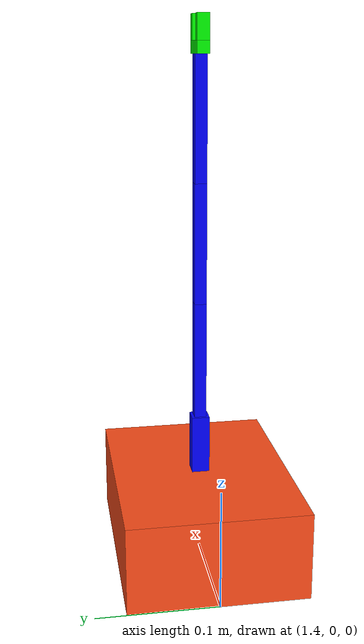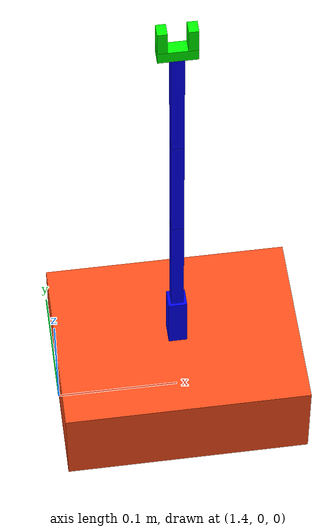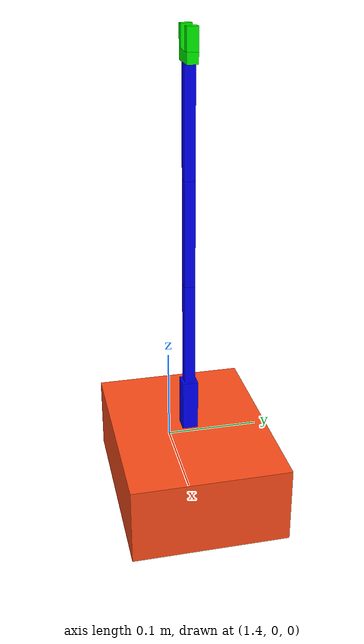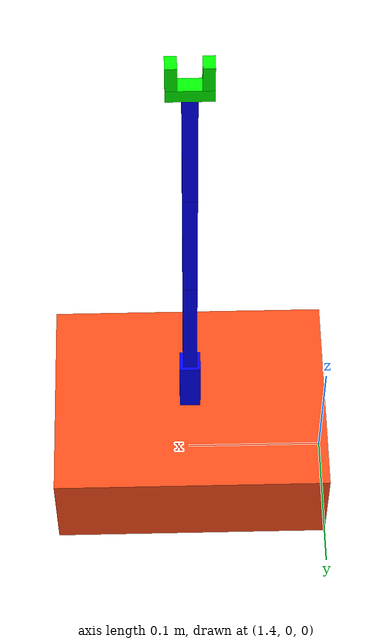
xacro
<?xml version="1.0"?>
<robot xmlns:xacro="http://www.ros.org/wiki/xacro" name="robotic_arm">
    <xacro:arg name="initial_positions_file" default="initial_positions.yaml" />

    <!-- Import robotic_arm urdf file -->
    <xacro:include filename="$(find moveit_resources_arm_description)/urdf/arm.urdf" />

    <!-- Import control_xacro -->
    <xacro:include filename="robotic_arm.ros2_control.xacro" />

    <xacro:robotic_arm_ros2_control name="FakeSystem" initial_positions_file="$(arg initial_positions_file)"/>

</robot>

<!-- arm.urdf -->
<!-- |    This document was autogenerated by xacro from byrot_arm.urdf.xacro           | -->
<!-- |    EDITING THIS FILE BY HAND IS NOT RECOMMENDED                                 | -->
<robot name="robotic_arm">
  <!-- This file represents the description of a 5 DOF robotic arm -->
  <!-- Specify some colours -->
  <material name="blue">
    <color rgba="0 0 1 1"/>
  </material>
  <material name="red">
    <color rgba="1 0 0 1"/>
  </material>
  <material name="green">
    <color rgba="0 1 0 1"/>
  </material>
  <material name="black">
    <color rgba="0 0 0 1"/>
  </material>
  <material name="white">
    <color rgba="1 1 1 1"/>
  </material>
  <material name="orange">
    <color rgba="1 0.3 0.1 1"/>
  </material>
  <!-- Specify some standard inertial calculations https://en.wikipedia.org/wiki/List_of_moments_of_inertia -->
  <!-- These make use of xacro's mathematical functionality -->
  <link name="world"/>
  <joint name="world_base_joint" type="fixed">
    <origin rpy="0 0 0" xyz="1.5 0.0 0.0"/>
    <parent link="world"/>
    <child link="base_link"/>
  </joint>
  <link name="base_link">
    <visual>
      <geometry>
        <box size="0.2 0.15 0.075"/>
      </geometry>
      <origin xyz="0.0 0.0 0.0375"/>
      <material name="orange"/>
    </visual>
    <collision>
      <geometry>
        <box size="0.2 0.15 0.075"/>
      </geometry>
      <origin xyz="0.0 0.0 0.0375"/>
      <material name="orange"/>
    </collision>
    <inertial>
      <origin xyz="0 0 0.0375"/>
      <mass value="1"/>
      <inertia ixx="0.0023437499999999995" ixy="0.0" ixz="0.0" iyy="0.0038020833333333335" iyz="0.0" izz="0.005208333333333333"/>
    </inertial>
  </link>
  <joint name="base_waist_joint" type="revolute">
    <origin xyz="0.0 0.0 0.075"/>
    <parent link="base_link"/>
    <child link="waist_link"/>
    <axis xyz="0 0 1"/>
    <limit effort="100" lower="-3.141592" upper="3.141592" velocity="100"/>
  </joint>
  <link name="waist_link">
    <visual>
      <geometry>
        <box size="0.015 0.015 0.05"/>
      </geometry>
      <origin xyz="0.0 0.0 0.025"/>
      <material name="blue"/>
    </visual>
    <collision>
      <geometry>
        <box size="0.015 0.015 0.05"/>
      </geometry>
      <origin xyz="0.0 0.0 0.25"/>
      <material name="blue"/>
    </collision>
    <inertial>
      <origin xyz="0 0 0.25"/>
      <mass value="0.5"/>
      <inertia ixx="0.00011354166666666668" ixy="0.0" ixz="0.0" iyy="0.00011354166666666668" iyz="0.0" izz="1.875e-05"/>
    </inertial>
  </link>
  <joint name="waist_shoulder_joint" type="revolute">
    <origin xyz="0.0 0.0 0.05"/>
    <parent link="waist_link"/>
    <child link="shoulder_link"/>
    <axis xyz="0 -1 0"/>
    <limit effort="100" lower="-3.141592" upper="3.141592" velocity="100"/>
  </joint>
  <link name="shoulder_link">
    <visual>
      <geometry>
        <box size="0.01 0.01 0.1"/>
      </geometry>
      <origin xyz="0.0 0.0 0.05"/>
      <material name="blue"/>
    </visual>
    <collision>
      <geometry>
        <box size="0.01 0.01 0.1"/>
      </geometry>
      <origin xyz="0.0 0.0 0.05"/>
      <material name="blue"/>
    </collision>
    <inertial>
      <origin xyz="0 0 0.05"/>
      <mass value="0.2"/>
      <inertia ixx="0.00016833333333333335" ixy="0.0" ixz="0.0" iyy="0.00016833333333333335" iyz="0.0" izz="3.3333333333333333e-06"/>
    </inertial>
  </link>
  <joint name="shoulder_bicep_joint" type="revolute">
    <origin xyz="0.0 0.0 0.1"/>
    <parent link="shoulder_link"/>
    <child link="bicep_link"/>
    <axis xyz="0 -1 0"/>
    <limit effort="100" lower="-3.141592" upper="3.141592" velocity="100"/>
  </joint>
  <link name="bicep_link">
    <visual>
      <geometry>
        <box size="0.01 0.01 0.1"/>
      </geometry>
      <origin xyz="0.0 0.0 0.05"/>
      <material name="blue"/>
    </visual>
    <collision>
      <geometry>
        <box size="0.01 0.01 0.1"/>
      </geometry>
      <origin xyz="0.0 0.0 0.5"/>
      <material name="blue"/>
    </collision>
    <inertial>
      <origin xyz="0 0 0.05"/>
      <mass value="0.2"/>
      <inertia ixx="0.00016833333333333335" ixy="0.0" ixz="0.0" iyy="0.00016833333333333335" iyz="0.0" izz="3.3333333333333333e-06"/>
    </inertial>
  </link>
  <joint name="bicep_forearm_joint" type="revolute">
    <origin xyz="0.0 0.0 0.1"/>
    <parent link="bicep_link"/>
    <child link="forearm_link"/>
    <axis xyz="0 -1 0"/>
    <limit effort="100" lower="-3.141592" upper="3.141592" velocity="100"/>
  </joint>
  <link name="forearm_link">
    <visual>
      <geometry>
        <box size="0.01 0.01 0.1"/>
      </geometry>
      <origin xyz="0.0 0.0 0.05"/>
      <material name="blue"/>
    </visual>
    <collision>
      <geometry>
        <box size="0.01 0.01 0.1"/>
      </geometry>
      <origin xyz="0.0 0.0 0.05"/>
      <material name="blue"/>
    </collision>
    <inertial>
      <origin xyz="0 0 0.05"/>
      <mass value="0.2"/>
      <inertia ixx="0.00016833333333333335" ixy="0.0" ixz="0.0" iyy="0.00016833333333333335" iyz="0.0" izz="3.3333333333333333e-06"/>
    </inertial>
  </link>
  <joint name="forearm_hand_joint" type="revolute">
    <origin xyz="0.0 0.0 0.1"/>
    <parent link="forearm_link"/>
    <child link="hand_link"/>
    <axis xyz="0 0 1"/>
    <limit effort="100" lower="-3.141592" upper="3.141592" velocity="100"/>
  </joint>
  <link name="hand_link" type="fixed">
    <visual>
      <geometry>
        <box size="0.03 0.01 0.01"/>
      </geometry>
      <origin xyz="0.0 0.0 0.005"/>
      <material name="green"/>
    </visual>
    <collision>
      <geometry>
        <box size="0.03 0.01 0.01"/>
      </geometry>
      <origin xyz="0.0 0.0 0.005"/>
      <material name="green"/>
    </collision>
    <inertial>
      <origin xyz="0 0 0.005"/>
      <mass value="0.02"/>
      <inertia ixx="3.3333333333333335e-07" ixy="0.0" ixz="0.0" iyy="1.6666666666666667e-06" iyz="0.0" izz="1.6666666666666667e-06"/>
    </inertial>
  </link>
  <joint name="hand_finger1_joint" type="prismatic">
    <origin xyz="0.01125 0.0 0.01"/>
    <parent link="hand_link"/>
    <child link="finger1_link"/>
    <axis xyz="-1 0 0"/>
    <limit effort="100" lower="0" upper="0.0075" velocity="100"/>
  </joint>
  <link name="finger1_link">
    <visual>
      <geometry>
        <box size="0.0075 0.01 0.02"/>
      </geometry>
      <origin xyz="0.0 0.0 0.01"/>
      <material name="green"/>
    </visual>
    <collision>
      <geometry>
        <box size="0.0075 0.01 0.02"/>
      </geometry>
      <origin xyz="0.0 0.0 0.01"/>
      <material name="green"/>
    </collision>
    <inertial>
      <origin xyz="0 0 0.01"/>
      <mass value="0.02"/>
      <inertia ixx="8.333333333333333e-07" ixy="0.0" ixz="0.0" iyy="7.604166666666667e-07" iyz="0.0" izz="2.604166666666667e-07"/>
    </inertial>
  </link>
  <joint name="hand_finger2_joint" type="prismatic">
    <origin xyz="-0.01125 0.0 0.01"/>
    <parent link="hand_link"/>
    <child link="finger2_link"/>
    <axis xyz="1 0 0"/>
    <limit effort="100" lower="0" upper="0.0075" velocity="100"/>
  </joint>
  <link name="finger2_link">
    <visual>
      <geometry>
        <box size="0.0075 0.01 0.02"/>
      </geometry>
      <origin xyz="0.0 0.0 0.01"/>
      <material name="green"/>
    </visual>
    <collision>
      <geometry>
        <box size="0.0075 0.01 0.02"/>
      </geometry>
      <origin xyz="0.0 0.0 0.01"/>
      <material name="green"/>
    </collision>
    <inertial>
      <origin xyz="0 0 0.01"/>
      <mass value="0.02"/>
      <inertia ixx="8.333333333333333e-07" ixy="0.0" ixz="0.0" iyy="7.604166666666667e-07" iyz="0.0" izz="2.604166666666667e-07"/>
    </inertial>
  </link>
</robot>
